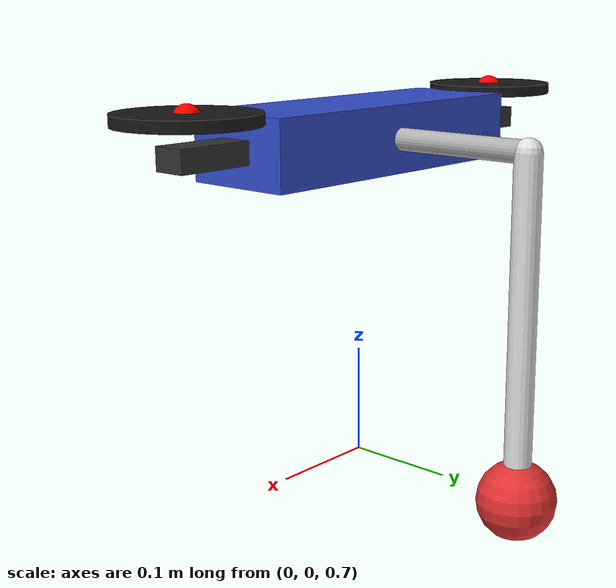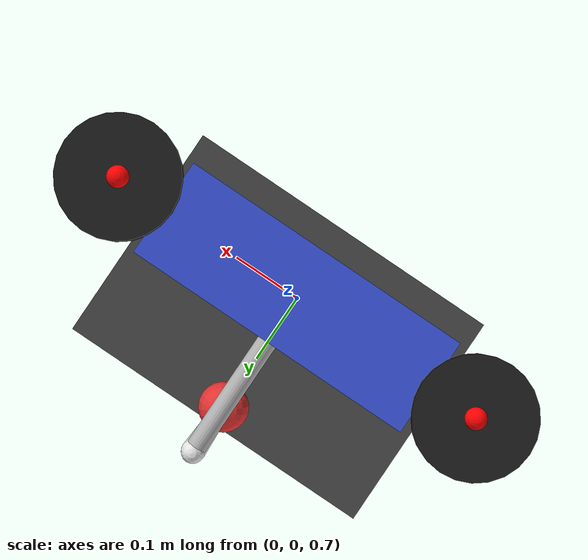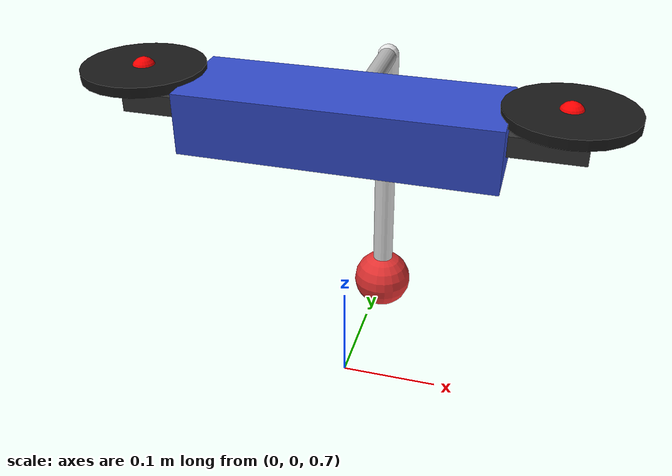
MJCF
<mujoco model="drone_pendulum_2d">
  <option timestep="0.001" gravity="0 0 -9.81" integrator="RK4"/>

  <visual>
    <headlight diffuse="0.6 0.6 0.6" ambient="0.3 0.3 0.3"/>
  </visual>

  <default>
    <geom contype="0" conaffinity="0"/>
  </default>

  <asset>
    <texture type="skybox" builtin="gradient" rgb1="0.6 0.7 0.9" rgb2="0.1 0.1 0.2" width="256" height="256"/>
    <texture name="grid" type="2d" builtin="checker" rgb1="0.2 0.2 0.2" rgb2="0.3 0.3 0.3" width="300" height="300"/>
    <material name="grid" texture="grid" texrepeat="20 20" reflectance="0.1"/>
  </asset>

  <worldbody>
    <light pos="0 0 4" dir="0 0 -1"/>
    <geom name="floor" type="plane" pos="0 0 0" size="10 10 0.1" material="grid"/>

    <body name="drone" pos="0 0 1">
      <joint name="slide_x" type="slide" axis="1 0 0"/>
      <joint name="slide_z" type="slide" axis="0 0 1"/>
      <joint name="pitch_y" type="hinge" axis="0 1 0"/>

      <geom name="body"   type="box"      size="0.15 0.05 0.03" rgba="0.2 0.3 0.8 1" mass="0.6"/>
      <geom name="arm"    type="box"      size="0.22 0.015 0.01" rgba="0.2 0.2 0.2 1" mass="0.05"/>
      <geom name="rotorL" type="cylinder" pos="-0.2 0 0.03" size="0.06 0.005" rgba="0.1 0.1 0.1 1" mass="0.05"/>
      <geom name="rotorR" type="cylinder" pos=" 0.2 0 0.03" size="0.06 0.005" rgba="0.1 0.1 0.1 1" mass="0.05"/>

      <site name="thrustL" pos="-0.2 0 0.03" size="0.012" rgba="1 0 0 1"/>
      <site name="thrustR" pos=" 0.2 0 0.03" size="0.012" rgba="1 0 0 1"/>

      <geom name="stick" type="cylinder" fromto="0 0 0 0 0.18 0" size="0.01" rgba="0.7 0.7 0.7 1" mass="0.02"/>

      <body name="pendulum" pos="0 0.18 0">
        <joint name="phi" type="hinge" axis="0 1 0"/>
        <geom name="rod" type="capsule" fromto="0 0 0 0 0 -0.30" size="0.012" rgba="0.9 0.9 0.9 1" mass="0.05"/>
        <geom name="bob" type="sphere"  pos="0 0 -0.30" size="0.035" rgba="0.9 0.2 0.2 1" mass="0.15"/>
        <site name="tip" pos="0 0 -0.30" size="0.012"/>
      </body>
    </body>
  </worldbody>

  <actuator>
    <general name="thrustL" site="thrustL" gear="0 0 1 0 0 0" ctrlrange="0 20"/>
    <general name="thrustR" site="thrustR" gear="0 0 1 0 0 0" ctrlrange="0 20"/>
  </actuator>
</mujoco>
